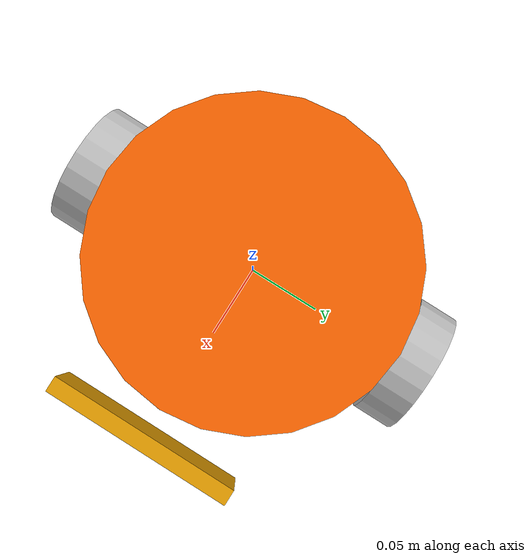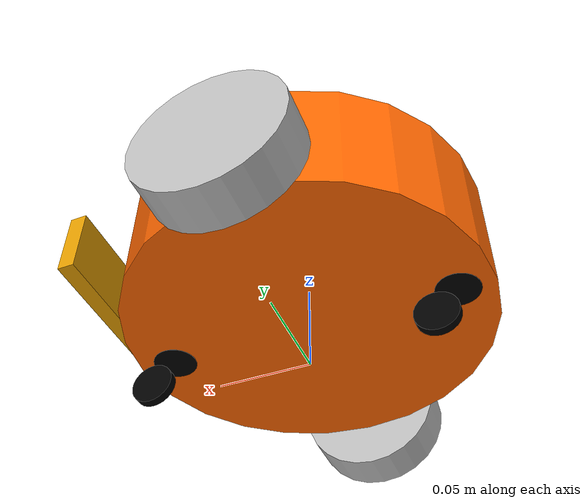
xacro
<?xml version="1.0"?>
<robot name="myrobot_diff_bot" xmlns:xacro="http://www.ros.org/wiki/xacro">

    <xacro:include filename="$(find myrobot_sim_gazebo)/xacro/myrobot_base.xacro" />
    <xacro:include filename="$(find myrobot_sim_gazebo)/xacro/sensor/rgbd_gazebo.xacro" />
    <xacro:include filename="$(find myrobot_sim_gazebo)/xacro/sensor/lidar_gazebo.xacro" />

    <xacro:property name="rgbd_offset_x" value="${base_radius+0.02}" />
    <xacro:property name="rgbd_offset_y" value="0" />
    <xacro:property name="rgbd_offset_z" value="0.02" />

    <xacro:property name="lidar_offset_x" value="0" />
    <xacro:property name="lidar_offset_y" value="0" />
    <xacro:property name="lidar_offset_z" value="${base_height/2+0.01}" />

    <!-- Base -->
    <xacro:base_gazebo/>

    <!-- rgbd -->
    <joint name="rgbd_joint" type="fixed">
        <origin xyz="${rgbd_offset_x} ${rgbd_offset_y} ${rgbd_offset_z}" rpy="0 0 0" />
        <parent link="base_link"/>
        <child link="camera_link"/>
    </joint>

    <!-- 保持与camera_link一致 -->
    <xacro:rgbd_camera prefix="camera"/>

    <!-- Lidar -->

</robot>

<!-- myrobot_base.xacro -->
<robot name="myrobot_base" xmlns:xacro="http://www.ros.org/wiki/xacro">

    <!-- PROPERTY LIST -->
    <xacro:property name="M_PI" value="3.1415926"/>

    <!-- base_link的质量、半径、高度 -->
    <xacro:property name="base_mass"   value="1" />
    <xacro:property name="base_radius"  value="0.1"/>
    <xacro:property name="base_height" value="0.07"/>

    <!-- 万向轮半径、轮子宽度、x轴偏移 -->
    <xacro:property name="caster_mass"    value="0.2" />
    <xacro:property name="caster_radius"  value="0.012"/>
    <xacro:property name="caster_length"    value="0.005" />
    <xacro:property name="caster_joint_x" value="${base_radius-0.02}"/>

    <!-- 运动轮质量、半径、宽度、x轴偏移、z相对于base_link的偏移 -->
    <xacro:property name="wheel_mass"   value="0.2" />
    <xacro:property name="wheel_radius" value="0.04"/>
    <xacro:property name="wheel_length" value="0.025"/>
    <xacro:property name="wheel_joint_x" value="0.0"/>
    <xacro:property name="wheel_joint_z" value="${caster_radius*2+base_height/2-wheel_radius}"/>

    <!-- Defining the colors used in this robot -->
    <material name="yellow">
        <color rgba="1 0.4 0 1"/>
    </material>
    <material name="black">
        <color rgba="0 0 0 0.95"/>
    </material>
    <material name="gray">
        <color rgba="0.75 0.75 0.75 1"/>
    </material>

    <!-- Macro for inertia matrix -->
    <xacro:macro name="sphere_inertial_matrix" params="m r">
        <inertial>
            <mass value="${m}" />
            <inertia ixx="${2*m*r*r/5}" ixy="0" ixz="0"
                iyy="${2*m*r*r/5}" iyz="0"
                izz="${2*m*r*r/5}" />
        </inertial>
    </xacro:macro>

    <xacro:macro name="cylinder_inertial_matrix" params="m r h">
        <inertial>
            <mass value="${m}" />
            <inertia ixx="${m*(3*r*r+h*h)/12}" ixy = "0" ixz = "0"
                iyy="${m*(3*r*r+h*h)/12}" iyz = "0"
                izz="${m*r*r/2}" />
        </inertial>
    </xacro:macro>

    <xacro:macro name="box_inertial_matrix" params="m l w h">
        <inertial>
             <mass value="${m}" />
             <inertia ixx="${m*(h*h + l*l)/12}" ixy = "0" ixz = "0"
                 iyy="${m*(w*w + l*l)/12}" iyz= "0"
                 izz="${m*(w*w + h*h)/12}" />
        </inertial>
    </xacro:macro>

    <!-- 运动轮的宏 -->
    <xacro:macro name="wheel" params="prefix reflect">
        <joint name="${prefix}_wheel_joint" type="continuous">
            <origin xyz="${wheel_joint_x} ${reflect*(base_radius+wheel_length/2)} ${-wheel_joint_z}" rpy="0 0 0"/>
            <parent link="base_link"/>
            <child link="${prefix}_wheel_link"/>
            <axis xyz="0 1 0"/>
        </joint>

        <link name="${prefix}_wheel_link">
            <visual>
                <origin xyz="0 0 0" rpy="${M_PI/2} 0 0" />
                <geometry>
                    <cylinder radius="${wheel_radius}" length = "${wheel_length}"/>
                </geometry>
                <material name="gray" />
            </visual>
            <collision>
                <origin xyz="0 0 0" rpy="${M_PI/2} 0 0" />
                <geometry>
                    <cylinder radius="${wheel_radius}" length = "${wheel_length}"/>
                </geometry>
            </collision>
            <xacro:cylinder_inertial_matrix  m="${wheel_mass}" r="${wheel_radius}" h="${wheel_length}" />
        </link>

        <gazebo reference="${prefix}_wheel_link">
            <material>Gazebo/Gray</material>
            <mu1>100000.0</mu1>
            <mu2>100000.0</mu2>
        </gazebo>

        <!-- Transmission is important to link the joints and the controller -->
        <transmission name="${prefix}_wheel_joint_trans">
            <type>transmission_interface/SimpleTransmission</type>
            <joint name="${prefix}_wheel_joint" >
                <hardwareInterface>hardware_interface/VelocityJointInterface</hardwareInterface>
            </joint>
            <actuator name="${prefix}_wheel_joint_motor">
                <hardwareInterface>hardware_interface/VelocityJointInterface</hardwareInterface>
                <mechanicalReduction>1</mechanicalReduction>
            </actuator>
        </transmission>
    </xacro:macro>

    <!-- 万向轮定义 -->
    <xacro:macro name="caster" params="prefix reflect">

        <joint name="${prefix}_top_caster_joint" type="continuous">
            <origin xyz="${reflect*caster_joint_x} 0 ${-(base_height/2)}" rpy="0 0 0"/>
            <parent link="base_link"/>
            <child link="${prefix}_top_link"/>
            <axis xyz="0 0 1"/>
        </joint>

        <link name="${prefix}_top_link">
            <visual>
                <origin xyz="0 0 0" rpy="0 0 0"/>
                <geometry>
                    <cylinder radius="${caster_radius}" length = "${caster_length/20}" />
                </geometry>
                <material name="black" />
            </visual>
            <collision>
                <origin xyz="0 0 0" rpy="0 0 0"/>
                <geometry>
                    <cylinder radius="${caster_radius}" length = "${caster_length/20}" />
                </geometry>
            </collision>
            <xacro:cylinder_inertial_matrix  m="${caster_mass/20}" r="${caster_radius}" h="${caster_length/20}" />
        </link>

        <joint name="${prefix}_caster_joint" type="continuous">
            <origin xyz="${caster_radius} 0 ${ -caster_radius}" rpy="0 0 0"/>
            <parent link="${prefix}_top_link"/>
            <child link="${prefix}_caster_link"/>
            <axis xyz="0 1 0"/>
        </joint>
        <link name="${prefix}_caster_link">
            <visual>
                <origin xyz="0 0 0" rpy="${M_PI/2} 0 0"/>
                <geometry>
                    <cylinder radius="${caster_radius}" length = "${caster_length}" />
                </geometry>
                <material name="black" />
            </visual>
            <collision>
                <origin xyz="0 0 0" rpy="${M_PI/2} 0 0"/>
                <geometry>
                    <cylinder radius="${caster_radius}" length = "${caster_length}" />
                </geometry>
            </collision>
            <xacro:cylinder_inertial_matrix  m="${caster_mass}" r="${caster_radius}" h="${caster_length}" />
        </link>

        <gazebo reference="${prefix}_caster_link">
            <material>Gazebo/Black</material>
        </gazebo>
    </xacro:macro>

    <xacro:macro name="base_gazebo">

        <link name="base_footprint"/>

        <joint name="base_footprint_joint" type="fixed">
            <origin xyz="0 0 ${base_height/2 + caster_radius*2}" rpy="0 0 0" />
            <parent link="base_footprint"/>
            <child link="base_link" />
        </joint>

        <link name="base_link">
            <visual>
                <origin xyz=" 0 0 0" rpy="0 0 0" />
                <geometry>

                    <cylinder radius="${base_radius}" length = "${base_height}"/>
                </geometry>
                <material name="yellow" />
            </visual>
            <collision>
                <origin xyz=" 0 0 0" rpy="0 0 0" />
                <geometry>
                    <cylinder radius="${base_radius}" length = "${base_height}"/>
                </geometry>
            </collision>
            <xacro:cylinder_inertial_matrix  m="${base_mass}" r="${base_radius}" h="${base_height}" />
        </link>

        <gazebo reference="base_link">
            <material>Gazebo/Yellow</material>
        </gazebo>

        <xacro:wheel prefix="left"  reflect="1"/>
        <xacro:wheel prefix="right" reflect="-1"/>

        <xacro:caster prefix="back"  reflect="-1"/>

        <xacro:caster prefix="front"  reflect="1"/>

        <!-- controller -->
        <gazebo>
            <plugin name="differential_drive_controller"
                    filename="libgazebo_ros_diff_drive.so">
                  <update_rate>30</update_rate>
                  <left_joint>left_wheel_joint</left_joint>
                  <right_joint>right_wheel_joint</right_joint>
                  <wheel_separation>${base_radius*2+wheel_length}</wheel_separation>
                  <wheel_diameter>${2*wheel_radius}</wheel_diameter>
                  <max_wheel_torque>10</max_wheel_torque>
                  <max_wheel_acceleration>1.0</max_wheel_acceleration>
                  <command_topic>cmd_vel</command_topic>
                  <publish_odom>true</publish_odom>
                  <publish_odom_tf>true</publish_odom_tf>
                  <publish_wheel_tf>true</publish_wheel_tf>
                  <odometry_topic>odom</odometry_topic>
                  <odometry_frame>odom</odometry_frame>
                  <robot_base_frame>base_footprint</robot_base_frame>
                  <odometry_source>1</odometry_source>
            </plugin>
        </gazebo>
    </xacro:macro>

</robot>

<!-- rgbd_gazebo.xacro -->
<robot xmlns:xacro="http://www.ros.org/wiki/xacro" name="rgbd_camera">

    <xacro:macro name="rgbd_camera" params="prefix:=camera">
        <!-- Create rgbd reference frame -->
        <!-- Add mesh for rgbd -->
        <link name="${prefix}_link">
            <origin xyz="0 0 0" rpy="0 0 0"/>
            <visual>
                <origin xyz="0 0 0" rpy="0 0 0"/>
                <geometry>
                    <box size="0.01 0.12 0.04" />
                </geometry>
            </visual>
        </link>

        <joint name="${prefix}_optical_joint" type="fixed">
            <origin xyz="0 0 0" rpy="${-pi/2} 0 ${-pi/2}"/>
            <parent link="${prefix}_link"/>
            <child link="${prefix}_optical_frame"/>
        </joint>

        <link name="${prefix}_optical_frame">
            <origin xyz="0 0 0" rpy="0 0 0"/>
        </link>

        <gazebo reference="${prefix}_link">
        <!-- 这里的${prefix}决定话题名 /camera/depth/camera_info -->
            <sensor type="depth" name="${prefix}">
                <always_on>true</always_on>
                <visualize>true</visualize>
                <update_rate>30.0</update_rate>
                <camera name="${prefix}">
                    <horizontal_fov>${60.0*pi/180.0}</horizontal_fov>
                    <image>
                        <format>R8G8B8</format>
                        <width>640</width>
                        <height>480</height>
                    </image>
                    <clip>
                        <near>0.02</near>
                        <far>8</far>
                    </clip>
                    <noise>
                        <type>gaussian</type>
                        <mean>0.0</mean>
                        <stddev>0.007</stddev>
                    </noise>
                </camera>
                <plugin name="${prefix}_controller" filename="libgazebo_ros_camera.so">
		 		 	<baseline>0.2</baseline>
                    <alwaysOn>true</alwaysOn>
                    <updateRate>20.0</updateRate>
                    <frame_name>${prefix}_optical_frame</frame_name>
                </plugin>
            </sensor>
        </gazebo>

    </xacro:macro>
</robot>
